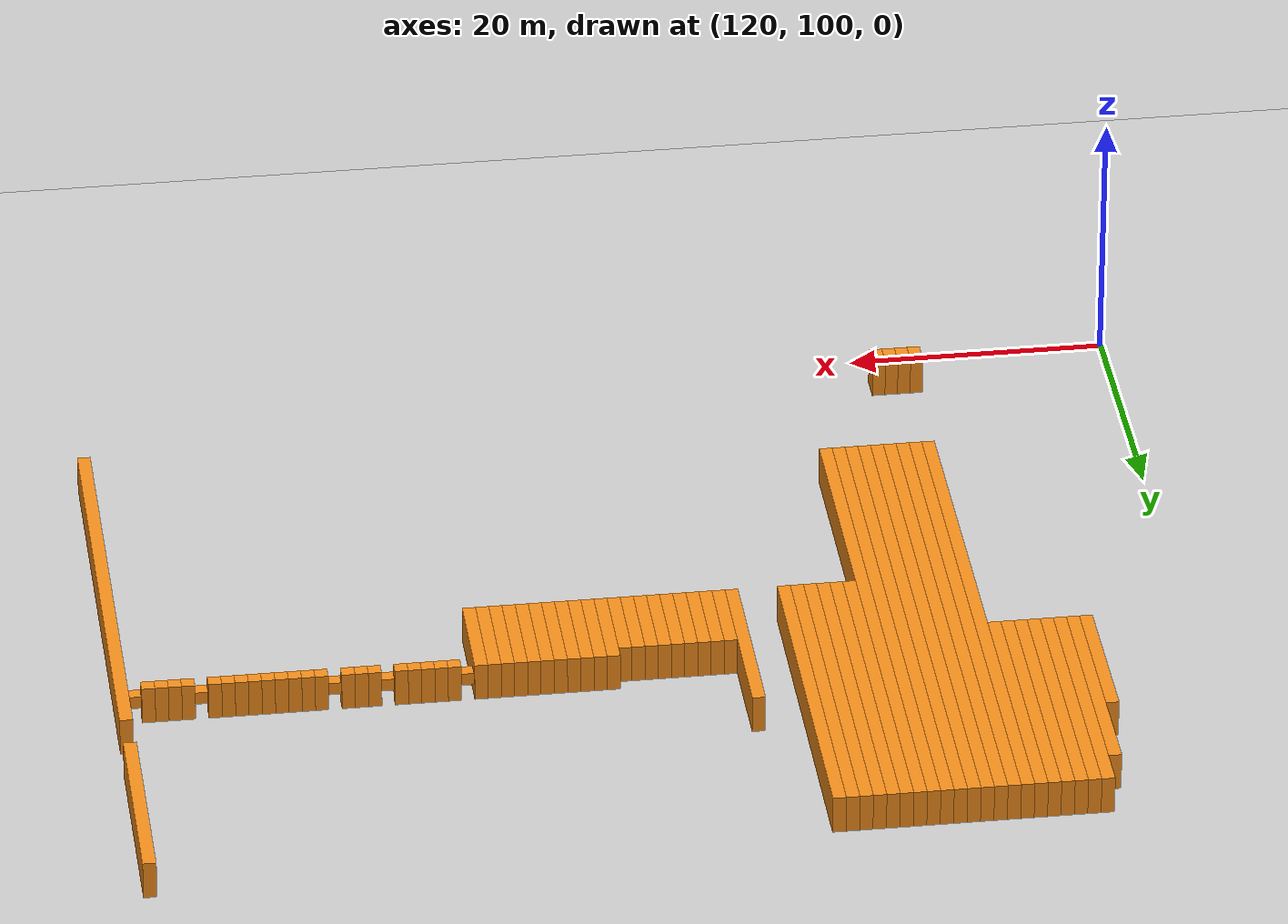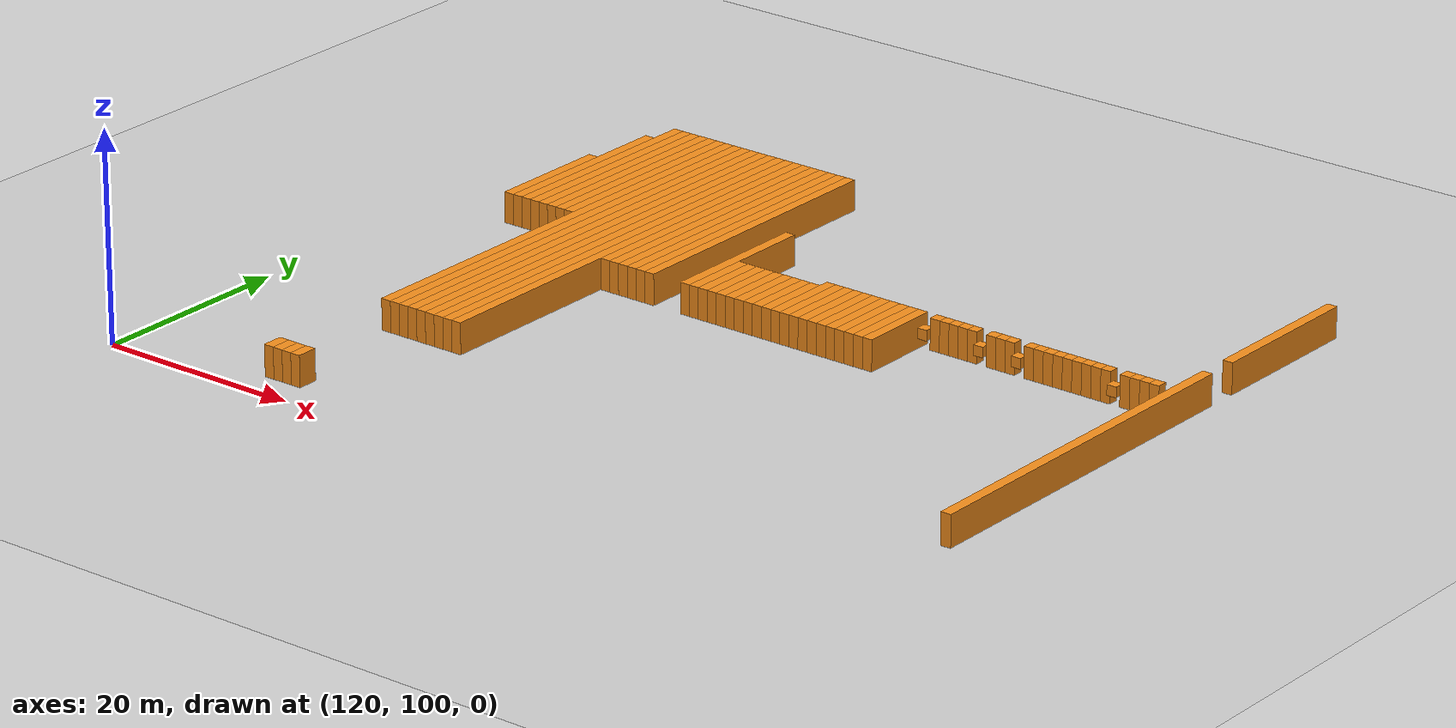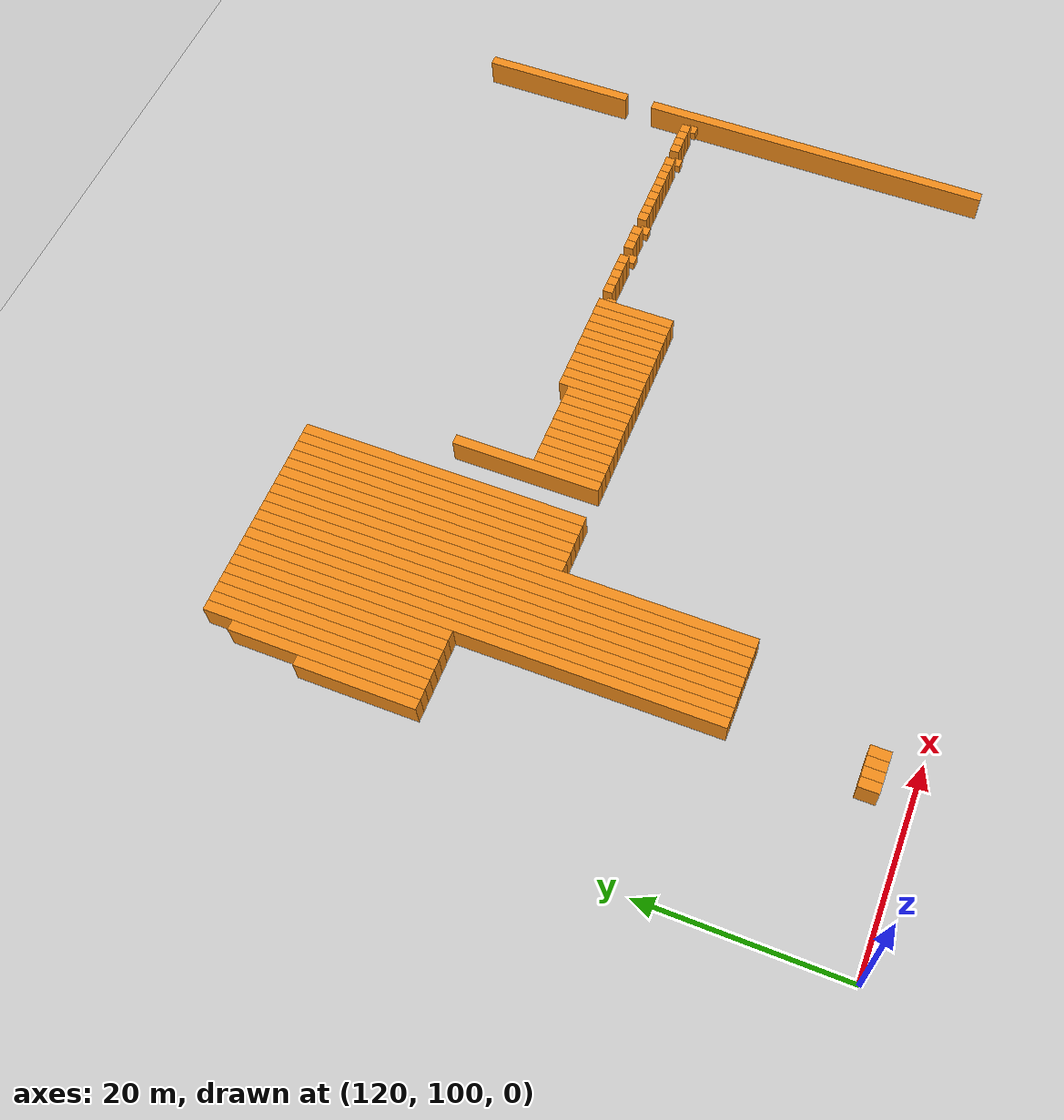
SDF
<sdf version="1.6">
 <world name="default">
  <include><uri>model://ground_plane</uri></include>
  <model name="unit_box_1393">
   <pose>128.50   149.00     1.50 0 0 0</pose>
   <static>1</static>
   <link name="link">
    <inertial>
     <mass>5000</mass>
     <inertia><ixx>200</ixx><ixy>0</ixy><ixz>0</ixz><iyy>200</iyy><iyz>0</iyz><izz>200</izz></inertia>
    </inertial>
    <collision name="collision"><geometry><box><size>1 12 3</size></box></geometry></collision>
    <visual name="visual">
     <geometry><box><size>1 12 3</size></box></geometry>
     <material>
      <script><name>Gazebo/Orange</name><uri>file://media/materials/scripts/gazebo.material</uri></script>
     </material>
    </visual>
   </link>
  </model>
  <model name="unit_box_1400">
   <pose>129.50   152.50     1.50 0 0 0</pose>
   <static>1</static>
   <link name="link">
    <inertial>
     <mass>5000</mass>
     <inertia><ixx>200</ixx><ixy>0</ixy><ixz>0</ixz><iyy>200</iyy><iyz>0</iyz><izz>200</izz></inertia>
    </inertial>
    <collision name="collision"><geometry><box><size>1 19 3</size></box></geometry></collision>
    <visual name="visual">
     <geometry><box><size>1 19 3</size></box></geometry>
     <material>
      <script><name>Gazebo/Orange</name><uri>file://media/materials/scripts/gazebo.material</uri></script>
     </material>
    </visual>
   </link>
  </model>
  <model name="unit_box_1407">
   <pose>130.50   154.00     1.50 0 0 0</pose>
   <static>1</static>
   <link name="link">
    <inertial>
     <mass>5000</mass>
     <inertia><ixx>200</ixx><ixy>0</ixy><ixz>0</ixz><iyy>200</iyy><iyz>0</iyz><izz>200</izz></inertia>
    </inertial>
    <collision name="collision"><geometry><box><size>1 22 3</size></box></geometry></collision>
    <visual name="visual">
     <geometry><box><size>1 22 3</size></box></geometry>
     <material>
      <script><name>Gazebo/Orange</name><uri>file://media/materials/scripts/gazebo.material</uri></script>
     </material>
    </visual>
   </link>
  </model>
  <model name="unit_box_1415">
   <pose>131.50   154.00     1.50 0 0 0</pose>
   <static>1</static>
   <link name="link">
    <inertial>
     <mass>5000</mass>
     <inertia><ixx>200</ixx><ixy>0</ixy><ixz>0</ixz><iyy>200</iyy><iyz>0</iyz><izz>200</izz></inertia>
    </inertial>
    <collision name="collision"><geometry><box><size>1 22 3</size></box></geometry></collision>
    <visual name="visual">
     <geometry><box><size>1 22 3</size></box></geometry>
     <material>
      <script><name>Gazebo/Orange</name><uri>file://media/materials/scripts/gazebo.material</uri></script>
     </material>
    </visual>
   </link>
  </model>
  <model name="unit_box_1422">
   <pose>132.50   154.00     1.50 0 0 0</pose>
   <static>1</static>
   <link name="link">
    <inertial>
     <mass>5000</mass>
     <inertia><ixx>200</ixx><ixy>0</ixy><ixz>0</ixz><iyy>200</iyy><iyz>0</iyz><izz>200</izz></inertia>
    </inertial>
    <collision name="collision"><geometry><box><size>1 22 3</size></box></geometry></collision>
    <visual name="visual">
     <geometry><box><size>1 22 3</size></box></geometry>
     <material>
      <script><name>Gazebo/Orange</name><uri>file://media/materials/scripts/gazebo.material</uri></script>
     </material>
    </visual>
   </link>
  </model>
  <model name="unit_box_1429">
   <pose>133.50   154.00     1.50 0 0 0</pose>
   <static>1</static>
   <link name="link">
    <inertial>
     <mass>5000</mass>
     <inertia><ixx>200</ixx><ixy>0</ixy><ixz>0</ixz><iyy>200</iyy><iyz>0</iyz><izz>200</izz></inertia>
    </inertial>
    <collision name="collision"><geometry><box><size>1 22 3</size></box></geometry></collision>
    <visual name="visual">
     <geometry><box><size>1 22 3</size></box></geometry>
     <material>
      <script><name>Gazebo/Orange</name><uri>file://media/materials/scripts/gazebo.material</uri></script>
     </material>
    </visual>
   </link>
  </model>
  <model name="unit_box_1436">
   <pose>134.50   154.00     1.50 0 0 0</pose>
   <static>1</static>
   <link name="link">
    <inertial>
     <mass>5000</mass>
     <inertia><ixx>200</ixx><ixy>0</ixy><ixz>0</ixz><iyy>200</iyy><iyz>0</iyz><izz>200</izz></inertia>
    </inertial>
    <collision name="collision"><geometry><box><size>1 22 3</size></box></geometry></collision>
    <visual name="visual">
     <geometry><box><size>1 22 3</size></box></geometry>
     <material>
      <script><name>Gazebo/Orange</name><uri>file://media/materials/scripts/gazebo.material</uri></script>
     </material>
    </visual>
   </link>
  </model>
  <model name="unit_box_1443">
   <pose>135.50   104.00     1.50 0 0 0</pose>
   <static>1</static>
   <link name="link">
    <inertial>
     <mass>5000</mass>
     <inertia><ixx>200</ixx><ixy>0</ixy><ixz>0</ixz><iyy>200</iyy><iyz>0</iyz><izz>200</izz></inertia>
    </inertial>
    <collision name="collision"><geometry><box><size>1 2 3</size></box></geometry></collision>
    <visual name="visual">
     <geometry><box><size>1 2 3</size></box></geometry>
     <material>
      <script><name>Gazebo/Orange</name><uri>file://media/materials/scripts/gazebo.material</uri></script>
     </material>
    </visual>
   </link>
  </model>
  <model name="unit_box_1444">
   <pose>135.50   154.00     1.50 0 0 0</pose>
   <static>1</static>
   <link name="link">
    <inertial>
     <mass>5000</mass>
     <inertia><ixx>200</ixx><ixy>0</ixy><ixz>0</ixz><iyy>200</iyy><iyz>0</iyz><izz>200</izz></inertia>
    </inertial>
    <collision name="collision"><geometry><box><size>1 22 3</size></box></geometry></collision>
    <visual name="visual">
     <geometry><box><size>1 22 3</size></box></geometry>
     <material>
      <script><name>Gazebo/Orange</name><uri>file://media/materials/scripts/gazebo.material</uri></script>
     </material>
    </visual>
   </link>
  </model>
  <model name="unit_box_1459">
   <pose>136.50   104.00     1.50 0 0 0</pose>
   <static>1</static>
   <link name="link">
    <inertial>
     <mass>5000</mass>
     <inertia><ixx>200</ixx><ixy>0</ixy><ixz>0</ixz><iyy>200</iyy><iyz>0</iyz><izz>200</izz></inertia>
    </inertial>
    <collision name="collision"><geometry><box><size>1 2 3</size></box></geometry></collision>
    <visual name="visual">
     <geometry><box><size>1 2 3</size></box></geometry>
     <material>
      <script><name>Gazebo/Orange</name><uri>file://media/materials/scripts/gazebo.material</uri></script>
     </material>
    </visual>
   </link>
  </model>
  <model name="unit_box_1460">
   <pose>136.50   141.00     1.50 0 0 0</pose>
   <static>1</static>
   <link name="link">
    <inertial>
     <mass>5000</mass>
     <inertia><ixx>200</ixx><ixy>0</ixy><ixz>0</ixz><iyy>200</iyy><iyz>0</iyz><izz>200</izz></inertia>
    </inertial>
    <collision name="collision"><geometry><box><size>1 48 3</size></box></geometry></collision>
    <visual name="visual">
     <geometry><box><size>1 48 3</size></box></geometry>
     <material>
      <script><name>Gazebo/Orange</name><uri>file://media/materials/scripts/gazebo.material</uri></script>
     </material>
    </visual>
   </link>
  </model>
  <model name="unit_box_1473">
   <pose>137.50   104.00     1.50 0 0 0</pose>
   <static>1</static>
   <link name="link">
    <inertial>
     <mass>5000</mass>
     <inertia><ixx>200</ixx><ixy>0</ixy><ixz>0</ixz><iyy>200</iyy><iyz>0</iyz><izz>200</izz></inertia>
    </inertial>
    <collision name="collision"><geometry><box><size>1 2 3</size></box></geometry></collision>
    <visual name="visual">
     <geometry><box><size>1 2 3</size></box></geometry>
     <material>
      <script><name>Gazebo/Orange</name><uri>file://media/materials/scripts/gazebo.material</uri></script>
     </material>
    </visual>
   </link>
  </model>
  <model name="unit_box_1474">
   <pose>137.50   141.00     1.50 0 0 0</pose>
   <static>1</static>
   <link name="link">
    <inertial>
     <mass>5000</mass>
     <inertia><ixx>200</ixx><ixy>0</ixy><ixz>0</ixz><iyy>200</iyy><iyz>0</iyz><izz>200</izz></inertia>
    </inertial>
    <collision name="collision"><geometry><box><size>1 48 3</size></box></geometry></collision>
    <visual name="visual">
     <geometry><box><size>1 48 3</size></box></geometry>
     <material>
      <script><name>Gazebo/Orange</name><uri>file://media/materials/scripts/gazebo.material</uri></script>
     </material>
    </visual>
   </link>
  </model>
  <model name="unit_box_1486">
   <pose>138.50   104.00     1.50 0 0 0</pose>
   <static>1</static>
   <link name="link">
    <inertial>
     <mass>5000</mass>
     <inertia><ixx>200</ixx><ixy>0</ixy><ixz>0</ixz><iyy>200</iyy><iyz>0</iyz><izz>200</izz></inertia>
    </inertial>
    <collision name="collision"><geometry><box><size>1 2 3</size></box></geometry></collision>
    <visual name="visual">
     <geometry><box><size>1 2 3</size></box></geometry>
     <material>
      <script><name>Gazebo/Orange</name><uri>file://media/materials/scripts/gazebo.material</uri></script>
     </material>
    </visual>
   </link>
  </model>
  <model name="unit_box_1487">
   <pose>138.50   141.00     1.50 0 0 0</pose>
   <static>1</static>
   <link name="link">
    <inertial>
     <mass>5000</mass>
     <inertia><ixx>200</ixx><ixy>0</ixy><ixz>0</ixz><iyy>200</iyy><iyz>0</iyz><izz>200</izz></inertia>
    </inertial>
    <collision name="collision"><geometry><box><size>1 48 3</size></box></geometry></collision>
    <visual name="visual">
     <geometry><box><size>1 48 3</size></box></geometry>
     <material>
      <script><name>Gazebo/Orange</name><uri>file://media/materials/scripts/gazebo.material</uri></script>
     </material>
    </visual>
   </link>
  </model>
  <model name="unit_box_1500">
   <pose>139.50   141.00     1.50 0 0 0</pose>
   <static>1</static>
   <link name="link">
    <inertial>
     <mass>5000</mass>
     <inertia><ixx>200</ixx><ixy>0</ixy><ixz>0</ixz><iyy>200</iyy><iyz>0</iyz><izz>200</izz></inertia>
    </inertial>
    <collision name="collision"><geometry><box><size>1 48 3</size></box></geometry></collision>
    <visual name="visual">
     <geometry><box><size>1 48 3</size></box></geometry>
     <material>
      <script><name>Gazebo/Orange</name><uri>file://media/materials/scripts/gazebo.material</uri></script>
     </material>
    </visual>
   </link>
  </model>
  <model name="unit_box_1513">
   <pose>140.50   141.00     1.50 0 0 0</pose>
   <static>1</static>
   <link name="link">
    <inertial>
     <mass>5000</mass>
     <inertia><ixx>200</ixx><ixy>0</ixy><ixz>0</ixz><iyy>200</iyy><iyz>0</iyz><izz>200</izz></inertia>
    </inertial>
    <collision name="collision"><geometry><box><size>1 48 3</size></box></geometry></collision>
    <visual name="visual">
     <geometry><box><size>1 48 3</size></box></geometry>
     <material>
      <script><name>Gazebo/Orange</name><uri>file://media/materials/scripts/gazebo.material</uri></script>
     </material>
    </visual>
   </link>
  </model>
  <model name="unit_box_1527">
   <pose>141.50   141.00     1.50 0 0 0</pose>
   <static>1</static>
   <link name="link">
    <inertial>
     <mass>5000</mass>
     <inertia><ixx>200</ixx><ixy>0</ixy><ixz>0</ixz><iyy>200</iyy><iyz>0</iyz><izz>200</izz></inertia>
    </inertial>
    <collision name="collision"><geometry><box><size>1 48 3</size></box></geometry></collision>
    <visual name="visual">
     <geometry><box><size>1 48 3</size></box></geometry>
     <material>
      <script><name>Gazebo/Orange</name><uri>file://media/materials/scripts/gazebo.material</uri></script>
     </material>
    </visual>
   </link>
  </model>
  <model name="unit_box_1535">
   <pose>142.50   141.00     1.50 0 0 0</pose>
   <static>1</static>
   <link name="link">
    <inertial>
     <mass>5000</mass>
     <inertia><ixx>200</ixx><ixy>0</ixy><ixz>0</ixz><iyy>200</iyy><iyz>0</iyz><izz>200</izz></inertia>
    </inertial>
    <collision name="collision"><geometry><box><size>1 48 3</size></box></geometry></collision>
    <visual name="visual">
     <geometry><box><size>1 48 3</size></box></geometry>
     <material>
      <script><name>Gazebo/Orange</name><uri>file://media/materials/scripts/gazebo.material</uri></script>
     </material>
    </visual>
   </link>
  </model>
  <model name="unit_box_1542">
   <pose>143.50   141.00     1.50 0 0 0</pose>
   <static>1</static>
   <link name="link">
    <inertial>
     <mass>5000</mass>
     <inertia><ixx>200</ixx><ixy>0</ixy><ixz>0</ixz><iyy>200</iyy><iyz>0</iyz><izz>200</izz></inertia>
    </inertial>
    <collision name="collision"><geometry><box><size>1 48 3</size></box></geometry></collision>
    <visual name="visual">
     <geometry><box><size>1 48 3</size></box></geometry>
     <material>
      <script><name>Gazebo/Orange</name><uri>file://media/materials/scripts/gazebo.material</uri></script>
     </material>
    </visual>
   </link>
  </model>
  <model name="unit_box_1549">
   <pose>144.50   141.00     1.50 0 0 0</pose>
   <static>1</static>
   <link name="link">
    <inertial>
     <mass>5000</mass>
     <inertia><ixx>200</ixx><ixy>0</ixy><ixz>0</ixz><iyy>200</iyy><iyz>0</iyz><izz>200</izz></inertia>
    </inertial>
    <collision name="collision"><geometry><box><size>1 48 3</size></box></geometry></collision>
    <visual name="visual">
     <geometry><box><size>1 48 3</size></box></geometry>
     <material>
      <script><name>Gazebo/Orange</name><uri>file://media/materials/scripts/gazebo.material</uri></script>
     </material>
    </visual>
   </link>
  </model>
  <model name="unit_box_1556">
   <pose>145.50   150.50     1.50 0 0 0</pose>
   <static>1</static>
   <link name="link">
    <inertial>
     <mass>5000</mass>
     <inertia><ixx>200</ixx><ixy>0</ixy><ixz>0</ixz><iyy>200</iyy><iyz>0</iyz><izz>200</izz></inertia>
    </inertial>
    <collision name="collision"><geometry><box><size>1 29 3</size></box></geometry></collision>
    <visual name="visual">
     <geometry><box><size>1 29 3</size></box></geometry>
     <material>
      <script><name>Gazebo/Orange</name><uri>file://media/materials/scripts/gazebo.material</uri></script>
     </material>
    </visual>
   </link>
  </model>
  <model name="unit_box_1563">
   <pose>146.50   150.50     1.50 0 0 0</pose>
   <static>1</static>
   <link name="link">
    <inertial>
     <mass>5000</mass>
     <inertia><ixx>200</ixx><ixy>0</ixy><ixz>0</ixz><iyy>200</iyy><iyz>0</iyz><izz>200</izz></inertia>
    </inertial>
    <collision name="collision"><geometry><box><size>1 29 3</size></box></geometry></collision>
    <visual name="visual">
     <geometry><box><size>1 29 3</size></box></geometry>
     <material>
      <script><name>Gazebo/Orange</name><uri>file://media/materials/scripts/gazebo.material</uri></script>
     </material>
    </visual>
   </link>
  </model>
  <model name="unit_box_1570">
   <pose>147.50   150.50     1.50 0 0 0</pose>
   <static>1</static>
   <link name="link">
    <inertial>
     <mass>5000</mass>
     <inertia><ixx>200</ixx><ixy>0</ixy><ixz>0</ixz><iyy>200</iyy><iyz>0</iyz><izz>200</izz></inertia>
    </inertial>
    <collision name="collision"><geometry><box><size>1 29 3</size></box></geometry></collision>
    <visual name="visual">
     <geometry><box><size>1 29 3</size></box></geometry>
     <material>
      <script><name>Gazebo/Orange</name><uri>file://media/materials/scripts/gazebo.material</uri></script>
     </material>
    </visual>
   </link>
  </model>
  <model name="unit_box_1578">
   <pose>148.50   150.50     1.50 0 0 0</pose>
   <static>1</static>
   <link name="link">
    <inertial>
     <mass>5000</mass>
     <inertia><ixx>200</ixx><ixy>0</ixy><ixz>0</ixz><iyy>200</iyy><iyz>0</iyz><izz>200</izz></inertia>
    </inertial>
    <collision name="collision"><geometry><box><size>1 29 3</size></box></geometry></collision>
    <visual name="visual">
     <geometry><box><size>1 29 3</size></box></geometry>
     <material>
      <script><name>Gazebo/Orange</name><uri>file://media/materials/scripts/gazebo.material</uri></script>
     </material>
    </visual>
   </link>
  </model>
  <model name="unit_box_1587">
   <pose>149.50   150.50     1.50 0 0 0</pose>
   <static>1</static>
   <link name="link">
    <inertial>
     <mass>5000</mass>
     <inertia><ixx>200</ixx><ixy>0</ixy><ixz>0</ixz><iyy>200</iyy><iyz>0</iyz><izz>200</izz></inertia>
    </inertial>
    <collision name="collision"><geometry><box><size>1 29 3</size></box></geometry></collision>
    <visual name="visual">
     <geometry><box><size>1 29 3</size></box></geometry>
     <material>
      <script><name>Gazebo/Orange</name><uri>file://media/materials/scripts/gazebo.material</uri></script>
     </material>
    </visual>
   </link>
  </model>
  <model name="unit_box_1595">
   <pose>150.50   150.50     1.50 0 0 0</pose>
   <static>1</static>
   <link name="link">
    <inertial>
     <mass>5000</mass>
     <inertia><ixx>200</ixx><ixy>0</ixy><ixz>0</ixz><iyy>200</iyy><iyz>0</iyz><izz>200</izz></inertia>
    </inertial>
    <collision name="collision"><geometry><box><size>1 29 3</size></box></geometry></collision>
    <visual name="visual">
     <geometry><box><size>1 29 3</size></box></geometry>
     <material>
      <script><name>Gazebo/Orange</name><uri>file://media/materials/scripts/gazebo.material</uri></script>
     </material>
    </visual>
   </link>
  </model>
  <model name="unit_box_1628">
   <pose>154.50   143.50     1.50 0 0 0</pose>
   <static>1</static>
   <link name="link">
    <inertial>
     <mass>5000</mass>
     <inertia><ixx>200</ixx><ixy>0</ixy><ixz>0</ixz><iyy>200</iyy><iyz>0</iyz><izz>200</izz></inertia>
    </inertial>
    <collision name="collision"><geometry><box><size>1 15 3</size></box></geometry></collision>
    <visual name="visual">
     <geometry><box><size>1 15 3</size></box></geometry>
     <material>
      <script><name>Gazebo/Orange</name><uri>file://media/materials/scripts/gazebo.material</uri></script>
     </material>
    </visual>
   </link>
  </model>
  <model name="unit_box_1638">
   <pose>155.50   139.50     1.50 0 0 0</pose>
   <static>1</static>
   <link name="link">
    <inertial>
     <mass>5000</mass>
     <inertia><ixx>200</ixx><ixy>0</ixy><ixz>0</ixz><iyy>200</iyy><iyz>0</iyz><izz>200</izz></inertia>
    </inertial>
    <collision name="collision"><geometry><box><size>1 7 3</size></box></geometry></collision>
    <visual name="visual">
     <geometry><box><size>1 7 3</size></box></geometry>
     <material>
      <script><name>Gazebo/Orange</name><uri>file://media/materials/scripts/gazebo.material</uri></script>
     </material>
    </visual>
   </link>
  </model>
  <model name="unit_box_1646">
   <pose>156.50   139.50     1.50 0 0 0</pose>
   <static>1</static>
   <link name="link">
    <inertial>
     <mass>5000</mass>
     <inertia><ixx>200</ixx><ixy>0</ixy><ixz>0</ixz><iyy>200</iyy><iyz>0</iyz><izz>200</izz></inertia>
    </inertial>
    <collision name="collision"><geometry><box><size>1 7 3</size></box></geometry></collision>
    <visual name="visual">
     <geometry><box><size>1 7 3</size></box></geometry>
     <material>
      <script><name>Gazebo/Orange</name><uri>file://media/materials/scripts/gazebo.material</uri></script>
     </material>
    </visual>
   </link>
  </model>
  <model name="unit_box_1654">
   <pose>157.50   139.50     1.50 0 0 0</pose>
   <static>1</static>
   <link name="link">
    <inertial>
     <mass>5000</mass>
     <inertia><ixx>200</ixx><ixy>0</ixy><ixz>0</ixz><iyy>200</iyy><iyz>0</iyz><izz>200</izz></inertia>
    </inertial>
    <collision name="collision"><geometry><box><size>1 7 3</size></box></geometry></collision>
    <visual name="visual">
     <geometry><box><size>1 7 3</size></box></geometry>
     <material>
      <script><name>Gazebo/Orange</name><uri>file://media/materials/scripts/gazebo.material</uri></script>
     </material>
    </visual>
   </link>
  </model>
  <model name="unit_box_1662">
   <pose>158.50   139.50     1.50 0 0 0</pose>
   <static>1</static>
   <link name="link">
    <inertial>
     <mass>5000</mass>
     <inertia><ixx>200</ixx><ixy>0</ixy><ixz>0</ixz><iyy>200</iyy><iyz>0</iyz><izz>200</izz></inertia>
    </inertial>
    <collision name="collision"><geometry><box><size>1 7 3</size></box></geometry></collision>
    <visual name="visual">
     <geometry><box><size>1 7 3</size></box></geometry>
     <material>
      <script><name>Gazebo/Orange</name><uri>file://media/materials/scripts/gazebo.material</uri></script>
     </material>
    </visual>
   </link>
  </model>
  <model name="unit_box_1669">
   <pose>159.50   139.50     1.50 0 0 0</pose>
   <static>1</static>
   <link name="link">
    <inertial>
     <mass>5000</mass>
     <inertia><ixx>200</ixx><ixy>0</ixy><ixz>0</ixz><iyy>200</iyy><iyz>0</iyz><izz>200</izz></inertia>
    </inertial>
    <collision name="collision"><geometry><box><size>1 7 3</size></box></geometry></collision>
    <visual name="visual">
     <geometry><box><size>1 7 3</size></box></geometry>
     <material>
      <script><name>Gazebo/Orange</name><uri>file://media/materials/scripts/gazebo.material</uri></script>
     </material>
    </visual>
   </link>
  </model>
  <model name="unit_box_1676">
   <pose>160.50   139.50     1.50 0 0 0</pose>
   <static>1</static>
   <link name="link">
    <inertial>
     <mass>5000</mass>
     <inertia><ixx>200</ixx><ixy>0</ixy><ixz>0</ixz><iyy>200</iyy><iyz>0</iyz><izz>200</izz></inertia>
    </inertial>
    <collision name="collision"><geometry><box><size>1 7 3</size></box></geometry></collision>
    <visual name="visual">
     <geometry><box><size>1 7 3</size></box></geometry>
     <material>
      <script><name>Gazebo/Orange</name><uri>file://media/materials/scripts/gazebo.material</uri></script>
     </material>
    </visual>
   </link>
  </model>
  <model name="unit_box_1685">
   <pose>161.50   139.50     1.50 0 0 0</pose>
   <static>1</static>
   <link name="link">
    <inertial>
     <mass>5000</mass>
     <inertia><ixx>200</ixx><ixy>0</ixy><ixz>0</ixz><iyy>200</iyy><iyz>0</iyz><izz>200</izz></inertia>
    </inertial>
    <collision name="collision"><geometry><box><size>1 7 3</size></box></geometry></collision>
    <visual name="visual">
     <geometry><box><size>1 7 3</size></box></geometry>
     <material>
      <script><name>Gazebo/Orange</name><uri>file://media/materials/scripts/gazebo.material</uri></script>
     </material>
    </visual>
   </link>
  </model>
  <model name="unit_box_1693">
   <pose>162.50   139.50     1.50 0 0 0</pose>
   <static>1</static>
   <link name="link">
    <inertial>
     <mass>5000</mass>
     <inertia><ixx>200</ixx><ixy>0</ixy><ixz>0</ixz><iyy>200</iyy><iyz>0</iyz><izz>200</izz></inertia>
    </inertial>
    <collision name="collision"><geometry><box><size>1 7 3</size></box></geometry></collision>
    <visual name="visual">
     <geometry><box><size>1 7 3</size></box></geometry>
     <material>
      <script><name>Gazebo/Orange</name><uri>file://media/materials/scripts/gazebo.material</uri></script>
     </material>
    </visual>
   </link>
  </model>
  <model name="unit_box_1701">
   <pose>163.50   139.50     1.50 0 0 0</pose>
   <static>1</static>
   <link name="link">
    <inertial>
     <mass>5000</mass>
     <inertia><ixx>200</ixx><ixy>0</ixy><ixz>0</ixz><iyy>200</iyy><iyz>0</iyz><izz>200</izz></inertia>
    </inertial>
    <collision name="collision"><geometry><box><size>1 7 3</size></box></geometry></collision>
    <visual name="visual">
     <geometry><box><size>1 7 3</size></box></geometry>
     <material>
      <script><name>Gazebo/Orange</name><uri>file://media/materials/scripts/gazebo.material</uri></script>
     </material>
    </visual>
   </link>
  </model>
  <model name="unit_box_1709">
   <pose>164.50   140.00     1.50 0 0 0</pose>
   <static>1</static>
   <link name="link">
    <inertial>
     <mass>5000</mass>
     <inertia><ixx>200</ixx><ixy>0</ixy><ixz>0</ixz><iyy>200</iyy><iyz>0</iyz><izz>200</izz></inertia>
    </inertial>
    <collision name="collision"><geometry><box><size>1 8 3</size></box></geometry></collision>
    <visual name="visual">
     <geometry><box><size>1 8 3</size></box></geometry>
     <material>
      <script><name>Gazebo/Orange</name><uri>file://media/materials/scripts/gazebo.material</uri></script>
     </material>
    </visual>
   </link>
  </model>
  <model name="unit_box_1717">
   <pose>165.50   140.00     1.50 0 0 0</pose>
   <static>1</static>
   <link name="link">
    <inertial>
     <mass>5000</mass>
     <inertia><ixx>200</ixx><ixy>0</ixy><ixz>0</ixz><iyy>200</iyy><iyz>0</iyz><izz>200</izz></inertia>
    </inertial>
    <collision name="collision"><geometry><box><size>1 8 3</size></box></geometry></collision>
    <visual name="visual">
     <geometry><box><size>1 8 3</size></box></geometry>
     <material>
      <script><name>Gazebo/Orange</name><uri>file://media/materials/scripts/gazebo.material</uri></script>
     </material>
    </visual>
   </link>
  </model>
  <model name="unit_box_1724">
   <pose>166.50   140.00     1.50 0 0 0</pose>
   <static>1</static>
   <link name="link">
    <inertial>
     <mass>5000</mass>
     <inertia><ixx>200</ixx><ixy>0</ixy><ixz>0</ixz><iyy>200</iyy><iyz>0</iyz><izz>200</izz></inertia>
    </inertial>
    <collision name="collision"><geometry><box><size>1 8 3</size></box></geometry></collision>
    <visual name="visual">
     <geometry><box><size>1 8 3</size></box></geometry>
     <material>
      <script><name>Gazebo/Orange</name><uri>file://media/materials/scripts/gazebo.material</uri></script>
     </material>
    </visual>
   </link>
  </model>
  <model name="unit_box_1730">
   <pose>167.50   140.00     1.50 0 0 0</pose>
   <static>1</static>
   <link name="link">
    <inertial>
     <mass>5000</mass>
     <inertia><ixx>200</ixx><ixy>0</ixy><ixz>0</ixz><iyy>200</iyy><iyz>0</iyz><izz>200</izz></inertia>
    </inertial>
    <collision name="collision"><geometry><box><size>1 8 3</size></box></geometry></collision>
    <visual name="visual">
     <geometry><box><size>1 8 3</size></box></geometry>
     <material>
      <script><name>Gazebo/Orange</name><uri>file://media/materials/scripts/gazebo.material</uri></script>
     </material>
    </visual>
   </link>
  </model>
  <model name="unit_box_1736">
   <pose>168.50   140.00     1.50 0 0 0</pose>
   <static>1</static>
   <link name="link">
    <inertial>
     <mass>5000</mass>
     <inertia><ixx>200</ixx><ixy>0</ixy><ixz>0</ixz><iyy>200</iyy><iyz>0</iyz><izz>200</izz></inertia>
    </inertial>
    <collision name="collision"><geometry><box><size>1 8 3</size></box></geometry></collision>
    <visual name="visual">
     <geometry><box><size>1 8 3</size></box></geometry>
     <material>
      <script><name>Gazebo/Orange</name><uri>file://media/materials/scripts/gazebo.material</uri></script>
     </material>
    </visual>
   </link>
  </model>
  <model name="unit_box_1743">
   <pose>169.50   140.00     1.50 0 0 0</pose>
   <static>1</static>
   <link name="link">
    <inertial>
     <mass>5000</mass>
     <inertia><ixx>200</ixx><ixy>0</ixy><ixz>0</ixz><iyy>200</iyy><iyz>0</iyz><izz>200</izz></inertia>
    </inertial>
    <collision name="collision"><geometry><box><size>1 8 3</size></box></geometry></collision>
    <visual name="visual">
     <geometry><box><size>1 8 3</size></box></geometry>
     <material>
      <script><name>Gazebo/Orange</name><uri>file://media/materials/scripts/gazebo.material</uri></script>
     </material>
    </visual>
   </link>
  </model>
  <model name="unit_box_1750">
   <pose>170.50   140.00     1.50 0 0 0</pose>
   <static>1</static>
   <link name="link">
    <inertial>
     <mass>5000</mass>
     <inertia><ixx>200</ixx><ixy>0</ixy><ixz>0</ixz><iyy>200</iyy><iyz>0</iyz><izz>200</izz></inertia>
    </inertial>
    <collision name="collision"><geometry><box><size>1 8 3</size></box></geometry></collision>
    <visual name="visual">
     <geometry><box><size>1 8 3</size></box></geometry>
     <material>
      <script><name>Gazebo/Orange</name><uri>file://media/materials/scripts/gazebo.material</uri></script>
     </material>
    </visual>
   </link>
  </model>
  <model name="unit_box_1757">
   <pose>171.50   140.00     1.50 0 0 0</pose>
   <static>1</static>
   <link name="link">
    <inertial>
     <mass>5000</mass>
     <inertia><ixx>200</ixx><ixy>0</ixy><ixz>0</ixz><iyy>200</iyy><iyz>0</iyz><izz>200</izz></inertia>
    </inertial>
    <collision name="collision"><geometry><box><size>1 8 3</size></box></geometry></collision>
    <visual name="visual">
     <geometry><box><size>1 8 3</size></box></geometry>
     <material>
      <script><name>Gazebo/Orange</name><uri>file://media/materials/scripts/gazebo.material</uri></script>
     </material>
    </visual>
   </link>
  </model>
  <model name="unit_box_1764">
   <pose>172.50   140.00     1.50 0 0 0</pose>
   <static>1</static>
   <link name="link">
    <inertial>
     <mass>5000</mass>
     <inertia><ixx>200</ixx><ixy>0</ixy><ixz>0</ixz><iyy>200</iyy><iyz>0</iyz><izz>200</izz></inertia>
    </inertial>
    <collision name="collision"><geometry><box><size>1 8 3</size></box></geometry></collision>
    <visual name="visual">
     <geometry><box><size>1 8 3</size></box></geometry>
     <material>
      <script><name>Gazebo/Orange</name><uri>file://media/materials/scripts/gazebo.material</uri></script>
     </material>
    </visual>
   </link>
  </model>
  <model name="unit_box_1771">
   <pose>173.50   140.00     1.50 0 0 0</pose>
   <static>1</static>
   <link name="link">
    <inertial>
     <mass>5000</mass>
     <inertia><ixx>200</ixx><ixy>0</ixy><ixz>0</ixz><iyy>200</iyy><iyz>0</iyz><izz>200</izz></inertia>
    </inertial>
    <collision name="collision"><geometry><box><size>1 8 3</size></box></geometry></collision>
    <visual name="visual">
     <geometry><box><size>1 8 3</size></box></geometry>
     <material>
      <script><name>Gazebo/Orange</name><uri>file://media/materials/scripts/gazebo.material</uri></script>
     </material>
    </visual>
   </link>
  </model>
  <model name="unit_box_1778">
   <pose>174.50   140.00     1.50 0 0 0</pose>
   <static>1</static>
   <link name="link">
    <inertial>
     <mass>5000</mass>
     <inertia><ixx>200</ixx><ixy>0</ixy><ixz>0</ixz><iyy>200</iyy><iyz>0</iyz><izz>200</izz></inertia>
    </inertial>
    <collision name="collision"><geometry><box><size>1 8 3</size></box></geometry></collision>
    <visual name="visual">
     <geometry><box><size>1 8 3</size></box></geometry>
     <material>
      <script><name>Gazebo/Orange</name><uri>file://media/materials/scripts/gazebo.material</uri></script>
     </material>
    </visual>
   </link>
  </model>
  <model name="unit_box_1785">
   <pose>175.50   143.00     1.50 0 0 0</pose>
   <static>1</static>
   <link name="link">
    <inertial>
     <mass>5000</mass>
     <inertia><ixx>200</ixx><ixy>0</ixy><ixz>0</ixz><iyy>200</iyy><iyz>0</iyz><izz>200</izz></inertia>
    </inertial>
    <collision name="collision"><geometry><box><size>1 1 1</size></box></geometry></collision>
    <visual name="visual">
     <geometry><box><size>1 1 1</size></box></geometry>
     <material>
      <script><name>Gazebo/Orange</name><uri>file://media/materials/scripts/gazebo.material</uri></script>
     </material>
    </visual>
   </link>
  </model>
  <model name="unit_box_1792">
   <pose>176.50   143.50     1.50 0 0 0</pose>
   <static>1</static>
   <link name="link">
    <inertial>
     <mass>5000</mass>
     <inertia><ixx>200</ixx><ixy>0</ixy><ixz>0</ixz><iyy>200</iyy><iyz>0</iyz><izz>200</izz></inertia>
    </inertial>
    <collision name="collision"><geometry><box><size>1 1 3</size></box></geometry></collision>
    <visual name="visual">
     <geometry><box><size>1 1 3</size></box></geometry>
     <material>
      <script><name>Gazebo/Orange</name><uri>file://media/materials/scripts/gazebo.material</uri></script>
     </material>
    </visual>
   </link>
  </model>
  <model name="unit_box_1799">
   <pose>177.50   143.50     1.50 0 0 0</pose>
   <static>1</static>
   <link name="link">
    <inertial>
     <mass>5000</mass>
     <inertia><ixx>200</ixx><ixy>0</ixy><ixz>0</ixz><iyy>200</iyy><iyz>0</iyz><izz>200</izz></inertia>
    </inertial>
    <collision name="collision"><geometry><box><size>1 1 3</size></box></geometry></collision>
    <visual name="visual">
     <geometry><box><size>1 1 3</size></box></geometry>
     <material>
      <script><name>Gazebo/Orange</name><uri>file://media/materials/scripts/gazebo.material</uri></script>
     </material>
    </visual>
   </link>
  </model>
  <model name="unit_box_1806">
   <pose>178.50   143.50     1.50 0 0 0</pose>
   <static>1</static>
   <link name="link">
    <inertial>
     <mass>5000</mass>
     <inertia><ixx>200</ixx><ixy>0</ixy><ixz>0</ixz><iyy>200</iyy><iyz>0</iyz><izz>200</izz></inertia>
    </inertial>
    <collision name="collision"><geometry><box><size>1 1 3</size></box></geometry></collision>
    <visual name="visual">
     <geometry><box><size>1 1 3</size></box></geometry>
     <material>
      <script><name>Gazebo/Orange</name><uri>file://media/materials/scripts/gazebo.material</uri></script>
     </material>
    </visual>
   </link>
  </model>
  <model name="unit_box_1814">
   <pose>179.50   143.50     1.50 0 0 0</pose>
   <static>1</static>
   <link name="link">
    <inertial>
     <mass>5000</mass>
     <inertia><ixx>200</ixx><ixy>0</ixy><ixz>0</ixz><iyy>200</iyy><iyz>0</iyz><izz>200</izz></inertia>
    </inertial>
    <collision name="collision"><geometry><box><size>1 1 3</size></box></geometry></collision>
    <visual name="visual">
     <geometry><box><size>1 1 3</size></box></geometry>
     <material>
      <script><name>Gazebo/Orange</name><uri>file://media/materials/scripts/gazebo.material</uri></script>
     </material>
    </visual>
   </link>
  </model>
  <model name="unit_box_1822">
   <pose>180.50   143.50     1.50 0 0 0</pose>
   <static>1</static>
   <link name="link">
    <inertial>
     <mass>5000</mass>
     <inertia><ixx>200</ixx><ixy>0</ixy><ixz>0</ixz><iyy>200</iyy><iyz>0</iyz><izz>200</izz></inertia>
    </inertial>
    <collision name="collision"><geometry><box><size>1 1 3</size></box></geometry></collision>
    <visual name="visual">
     <geometry><box><size>1 1 3</size></box></geometry>
     <material>
      <script><name>Gazebo/Orange</name><uri>file://media/materials/scripts/gazebo.material</uri></script>
     </material>
    </visual>
   </link>
  </model>
  <model name="unit_box_1831">
   <pose>181.50   143.00     1.50 0 0 0</pose>
   <static>1</static>
   <link name="link">
    <inertial>
     <mass>5000</mass>
     <inertia><ixx>200</ixx><ixy>0</ixy><ixz>0</ixz><iyy>200</iyy><iyz>0</iyz><izz>200</izz></inertia>
    </inertial>
    <collision name="collision"><geometry><box><size>1 1 1</size></box></geometry></collision>
    <visual name="visual">
     <geometry><box><size>1 1 1</size></box></geometry>
     <material>
      <script><name>Gazebo/Orange</name><uri>file://media/materials/scripts/gazebo.material</uri></script>
     </material>
    </visual>
   </link>
  </model>
  <model name="unit_box_1841">
   <pose>182.50   143.50     1.50 0 0 0</pose>
   <static>1</static>
   <link name="link">
    <inertial>
     <mass>5000</mass>
     <inertia><ixx>200</ixx><ixy>0</ixy><ixz>0</ixz><iyy>200</iyy><iyz>0</iyz><izz>200</izz></inertia>
    </inertial>
    <collision name="collision"><geometry><box><size>1 1 3</size></box></geometry></collision>
    <visual name="visual">
     <geometry><box><size>1 1 3</size></box></geometry>
     <material>
      <script><name>Gazebo/Orange</name><uri>file://media/materials/scripts/gazebo.material</uri></script>
     </material>
    </visual>
   </link>
  </model>
  <model name="unit_box_1850">
   <pose>183.50   143.50     1.50 0 0 0</pose>
   <static>1</static>
   <link name="link">
    <inertial>
     <mass>5000</mass>
     <inertia><ixx>200</ixx><ixy>0</ixy><ixz>0</ixz><iyy>200</iyy><iyz>0</iyz><izz>200</izz></inertia>
    </inertial>
    <collision name="collision"><geometry><box><size>1 1 3</size></box></geometry></collision>
    <visual name="visual">
     <geometry><box><size>1 1 3</size></box></geometry>
     <material>
      <script><name>Gazebo/Orange</name><uri>file://media/materials/scripts/gazebo.material</uri></script>
     </material>
    </visual>
   </link>
  </model>
  <model name="unit_box_1859">
   <pose>184.50   143.50     1.50 0 0 0</pose>
   <static>1</static>
   <link name="link">
    <inertial>
     <mass>5000</mass>
     <inertia><ixx>200</ixx><ixy>0</ixy><ixz>0</ixz><iyy>200</iyy><iyz>0</iyz><izz>200</izz></inertia>
    </inertial>
    <collision name="collision"><geometry><box><size>1 1 3</size></box></geometry></collision>
    <visual name="visual">
     <geometry><box><size>1 1 3</size></box></geometry>
     <material>
      <script><name>Gazebo/Orange</name><uri>file://media/materials/scripts/gazebo.material</uri></script>
     </material>
    </visual>
   </link>
  </model>
  <model name="unit_box_1868">
   <pose>185.50   143.00     1.50 0 0 0</pose>
   <static>1</static>
   <link name="link">
    <inertial>
     <mass>5000</mass>
     <inertia><ixx>200</ixx><ixy>0</ixy><ixz>0</ixz><iyy>200</iyy><iyz>0</iyz><izz>200</izz></inertia>
    </inertial>
    <collision name="collision"><geometry><box><size>1 1 1</size></box></geometry></collision>
    <visual name="visual">
     <geometry><box><size>1 1 1</size></box></geometry>
     <material>
      <script><name>Gazebo/Orange</name><uri>file://media/materials/scripts/gazebo.material</uri></script>
     </material>
    </visual>
   </link>
  </model>
  <model name="unit_box_1876">
   <pose>186.50   143.50     1.50 0 0 0</pose>
   <static>1</static>
   <link name="link">
    <inertial>
     <mass>5000</mass>
     <inertia><ixx>200</ixx><ixy>0</ixy><ixz>0</ixz><iyy>200</iyy><iyz>0</iyz><izz>200</izz></inertia>
    </inertial>
    <collision name="collision"><geometry><box><size>1 1 3</size></box></geometry></collision>
    <visual name="visual">
     <geometry><box><size>1 1 3</size></box></geometry>
     <material>
      <script><name>Gazebo/Orange</name><uri>file://media/materials/scripts/gazebo.material</uri></script>
     </material>
    </visual>
   </link>
  </model>
  <model name="unit_box_1884">
   <pose>187.50   143.50     1.50 0 0 0</pose>
   <static>1</static>
   <link name="link">
    <inertial>
     <mass>5000</mass>
     <inertia><ixx>200</ixx><ixy>0</ixy><ixz>0</ixz><iyy>200</iyy><iyz>0</iyz><izz>200</izz></inertia>
    </inertial>
    <collision name="collision"><geometry><box><size>1 1 3</size></box></geometry></collision>
    <visual name="visual">
     <geometry><box><size>1 1 3</size></box></geometry>
     <material>
      <script><name>Gazebo/Orange</name><uri>file://media/materials/scripts/gazebo.material</uri></script>
     </material>
    </visual>
   </link>
  </model>
  <model name="unit_box_1892">
   <pose>188.50   143.50     1.50 0 0 0</pose>
   <static>1</static>
   <link name="link">
    <inertial>
     <mass>5000</mass>
     <inertia><ixx>200</ixx><ixy>0</ixy><ixz>0</ixz><iyy>200</iyy><iyz>0</iyz><izz>200</izz></inertia>
    </inertial>
    <collision name="collision"><geometry><box><size>1 1 3</size></box></geometry></collision>
    <visual name="visual">
     <geometry><box><size>1 1 3</size></box></geometry>
     <material>
      <script><name>Gazebo/Orange</name><uri>file://media/materials/scripts/gazebo.material</uri></script>
     </material>
    </visual>
   </link>
  </model>
  <model name="unit_box_1900">
   <pose>189.50   143.50     1.50 0 0 0</pose>
   <static>1</static>
   <link name="link">
    <inertial>
     <mass>5000</mass>
     <inertia><ixx>200</ixx><ixy>0</ixy><ixz>0</ixz><iyy>200</iyy><iyz>0</iyz><izz>200</izz></inertia>
    </inertial>
    <collision name="collision"><geometry><box><size>1 1 3</size></box></geometry></collision>
    <visual name="visual">
     <geometry><box><size>1 1 3</size></box></geometry>
     <material>
      <script><name>Gazebo/Orange</name><uri>file://media/materials/scripts/gazebo.material</uri></script>
     </material>
    </visual>
   </link>
  </model>
  <model name="unit_box_1908">
   <pose>190.50   143.50     1.50 0 0 0</pose>
   <static>1</static>
   <link name="link">
    <inertial>
     <mass>5000</mass>
     <inertia><ixx>200</ixx><ixy>0</ixy><ixz>0</ixz><iyy>200</iyy><iyz>0</iyz><izz>200</izz></inertia>
    </inertial>
    <collision name="collision"><geometry><box><size>1 1 3</size></box></geometry></collision>
    <visual name="visual">
     <geometry><box><size>1 1 3</size></box></geometry>
     <material>
      <script><name>Gazebo/Orange</name><uri>file://media/materials/scripts/gazebo.material</uri></script>
     </material>
    </visual>
   </link>
  </model>
  <model name="unit_box_1916">
   <pose>191.50   143.50     1.50 0 0 0</pose>
   <static>1</static>
   <link name="link">
    <inertial>
     <mass>5000</mass>
     <inertia><ixx>200</ixx><ixy>0</ixy><ixz>0</ixz><iyy>200</iyy><iyz>0</iyz><izz>200</izz></inertia>
    </inertial>
    <collision name="collision"><geometry><box><size>1 1 3</size></box></geometry></collision>
    <visual name="visual">
     <geometry><box><size>1 1 3</size></box></geometry>
     <material>
      <script><name>Gazebo/Orange</name><uri>file://media/materials/scripts/gazebo.material</uri></script>
     </material>
    </visual>
   </link>
  </model>
  <model name="unit_box_1924">
   <pose>192.50   143.50     1.50 0 0 0</pose>
   <static>1</static>
   <link name="link">
    <inertial>
     <mass>5000</mass>
     <inertia><ixx>200</ixx><ixy>0</ixy><ixz>0</ixz><iyy>200</iyy><iyz>0</iyz><izz>200</izz></inertia>
    </inertial>
    <collision name="collision"><geometry><box><size>1 1 3</size></box></geometry></collision>
    <visual name="visual">
     <geometry><box><size>1 1 3</size></box></geometry>
     <material>
      <script><name>Gazebo/Orange</name><uri>file://media/materials/scripts/gazebo.material</uri></script>
     </material>
    </visual>
   </link>
  </model>
  <model name="unit_box_1933">
   <pose>193.50   143.50     1.50 0 0 0</pose>
   <static>1</static>
   <link name="link">
    <inertial>
     <mass>5000</mass>
     <inertia><ixx>200</ixx><ixy>0</ixy><ixz>0</ixz><iyy>200</iyy><iyz>0</iyz><izz>200</izz></inertia>
    </inertial>
    <collision name="collision"><geometry><box><size>1 1 3</size></box></geometry></collision>
    <visual name="visual">
     <geometry><box><size>1 1 3</size></box></geometry>
     <material>
      <script><name>Gazebo/Orange</name><uri>file://media/materials/scripts/gazebo.material</uri></script>
     </material>
    </visual>
   </link>
  </model>
  <model name="unit_box_1942">
   <pose>194.50   143.50     1.50 0 0 0</pose>
   <static>1</static>
   <link name="link">
    <inertial>
     <mass>5000</mass>
     <inertia><ixx>200</ixx><ixy>0</ixy><ixz>0</ixz><iyy>200</iyy><iyz>0</iyz><izz>200</izz></inertia>
    </inertial>
    <collision name="collision"><geometry><box><size>1 1 3</size></box></geometry></collision>
    <visual name="visual">
     <geometry><box><size>1 1 3</size></box></geometry>
     <material>
      <script><name>Gazebo/Orange</name><uri>file://media/materials/scripts/gazebo.material</uri></script>
     </material>
    </visual>
   </link>
  </model>
  <model name="unit_box_1951">
   <pose>195.50   143.00     1.50 0 0 0</pose>
   <static>1</static>
   <link name="link">
    <inertial>
     <mass>5000</mass>
     <inertia><ixx>200</ixx><ixy>0</ixy><ixz>0</ixz><iyy>200</iyy><iyz>0</iyz><izz>200</izz></inertia>
    </inertial>
    <collision name="collision"><geometry><box><size>1 1 1</size></box></geometry></collision>
    <visual name="visual">
     <geometry><box><size>1 1 1</size></box></geometry>
     <material>
      <script><name>Gazebo/Orange</name><uri>file://media/materials/scripts/gazebo.material</uri></script>
     </material>
    </visual>
   </link>
  </model>
  <model name="unit_box_1960">
   <pose>196.50   143.50     1.50 0 0 0</pose>
   <static>1</static>
   <link name="link">
    <inertial>
     <mass>5000</mass>
     <inertia><ixx>200</ixx><ixy>0</ixy><ixz>0</ixz><iyy>200</iyy><iyz>0</iyz><izz>200</izz></inertia>
    </inertial>
    <collision name="collision"><geometry><box><size>1 1 3</size></box></geometry></collision>
    <visual name="visual">
     <geometry><box><size>1 1 3</size></box></geometry>
     <material>
      <script><name>Gazebo/Orange</name><uri>file://media/materials/scripts/gazebo.material</uri></script>
     </material>
    </visual>
   </link>
  </model>
  <model name="unit_box_1969">
   <pose>197.50   143.50     1.50 0 0 0</pose>
   <static>1</static>
   <link name="link">
    <inertial>
     <mass>5000</mass>
     <inertia><ixx>200</ixx><ixy>0</ixy><ixz>0</ixz><iyy>200</iyy><iyz>0</iyz><izz>200</izz></inertia>
    </inertial>
    <collision name="collision"><geometry><box><size>1 1 3</size></box></geometry></collision>
    <visual name="visual">
     <geometry><box><size>1 1 3</size></box></geometry>
     <material>
      <script><name>Gazebo/Orange</name><uri>file://media/materials/scripts/gazebo.material</uri></script>
     </material>
    </visual>
   </link>
  </model>
  <model name="unit_box_1978">
   <pose>198.50   143.50     1.50 0 0 0</pose>
   <static>1</static>
   <link name="link">
    <inertial>
     <mass>5000</mass>
     <inertia><ixx>200</ixx><ixy>0</ixy><ixz>0</ixz><iyy>200</iyy><iyz>0</iyz><izz>200</izz></inertia>
    </inertial>
    <collision name="collision"><geometry><box><size>1 1 3</size></box></geometry></collision>
    <visual name="visual">
     <geometry><box><size>1 1 3</size></box></geometry>
     <material>
      <script><name>Gazebo/Orange</name><uri>file://media/materials/scripts/gazebo.material</uri></script>
     </material>
    </visual>
   </link>
  </model>
  <model name="unit_box_1987">
   <pose>199.50   143.50     1.50 0 0 0</pose>
   <static>1</static>
   <link name="link">
    <inertial>
     <mass>5000</mass>
     <inertia><ixx>200</ixx><ixy>0</ixy><ixz>0</ixz><iyy>200</iyy><iyz>0</iyz><izz>200</izz></inertia>
    </inertial>
    <collision name="collision"><geometry><box><size>1 1 3</size></box></geometry></collision>
    <visual name="visual">
     <geometry><box><size>1 1 3</size></box></geometry>
     <material>
      <script><name>Gazebo/Orange</name><uri>file://media/materials/scripts/gazebo.material</uri></script>
     </material>
    </visual>
   </link>
  </model>
  <model name="unit_box_1996">
   <pose>200.50   143.00     1.50 0 0 0</pose>
   <static>1</static>
   <link name="link">
    <inertial>
     <mass>5000</mass>
     <inertia><ixx>200</ixx><ixy>0</ixy><ixz>0</ixz><iyy>200</iyy><iyz>0</iyz><izz>200</izz></inertia>
    </inertial>
    <collision name="collision"><geometry><box><size>1 1 1</size></box></geometry></collision>
    <visual name="visual">
     <geometry><box><size>1 1 1</size></box></geometry>
     <material>
      <script><name>Gazebo/Orange</name><uri>file://media/materials/scripts/gazebo.material</uri></script>
     </material>
    </visual>
   </link>
  </model>
  <model name="unit_box_2004">
   <pose>201.50   129.50     1.50 0 0 0</pose>
   <static>1</static>
   <link name="link">
    <inertial>
     <mass>5000</mass>
     <inertia><ixx>200</ixx><ixy>0</ixy><ixz>0</ixz><iyy>200</iyy><iyz>0</iyz><izz>200</izz></inertia>
    </inertial>
    <collision name="collision"><geometry><box><size>1 37 3</size></box></geometry></collision>
    <visual name="visual">
     <geometry><box><size>1 37 3</size></box></geometry>
     <material>
      <script><name>Gazebo/Orange</name><uri>file://media/materials/scripts/gazebo.material</uri></script>
     </material>
    </visual>
   </link>
  </model>
  <model name="unit_box_2005">
   <pose>201.50   159.00     1.50 0 0 0</pose>
   <static>1</static>
   <link name="link">
    <inertial>
     <mass>5000</mass>
     <inertia><ixx>200</ixx><ixy>0</ixy><ixz>0</ixz><iyy>200</iyy><iyz>0</iyz><izz>200</izz></inertia>
    </inertial>
    <collision name="collision"><geometry><box><size>1 16 3</size></box></geometry></collision>
    <visual name="visual">
     <geometry><box><size>1 16 3</size></box></geometry>
     <material>
      <script><name>Gazebo/Orange</name><uri>file://media/materials/scripts/gazebo.material</uri></script>
     </material>
    </visual>
   </link>
  </model>
 </world>
</sdf>
